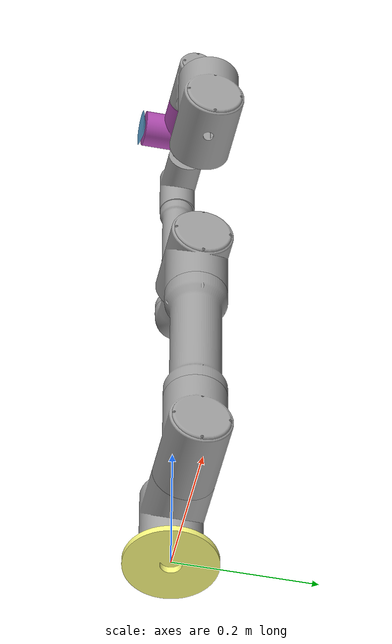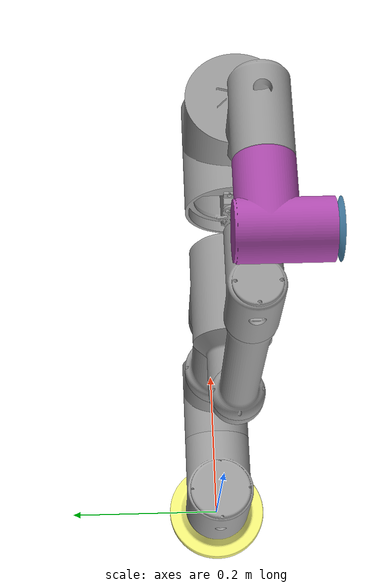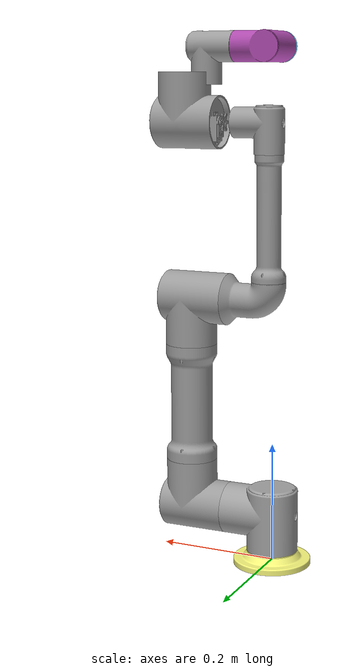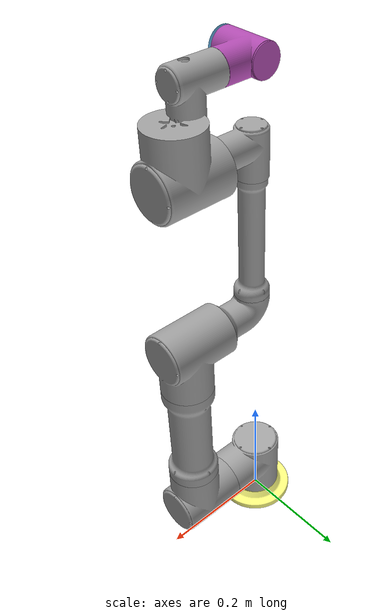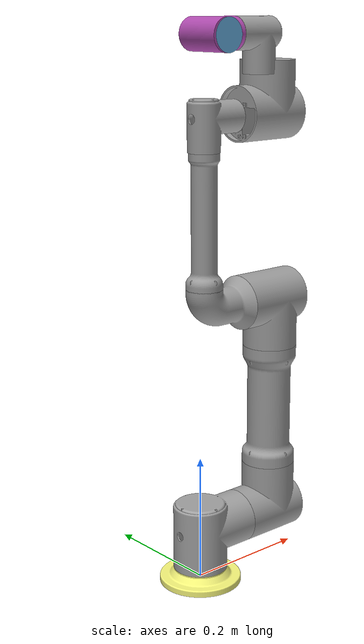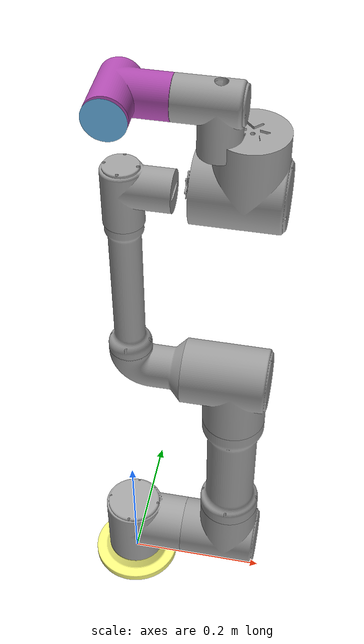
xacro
<?xml version="1.0"?>
<robot xmlns:xacro="http://www.ros.org/wiki/xacro" name="ArmProject">
    <xacro:arg name="initial_positions_file" default="initial_positions.yaml" />

    <!-- Import ArmProject urdf file -->
    <xacro:include filename="$(find ur5Model)/urdf/urdfModel.urdf" />

    <!-- Import control_xacro -->
    <xacro:include filename="ArmProject.ros2_control.xacro" />

    <xacro:ArmProject_ros2_control name="FakeSystem" initial_positions_file="$(arg initial_positions_file)"/>

</robot>

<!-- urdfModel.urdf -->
<robot name="ArmProject">

  <material name="base_v1_material">
     <color rgba="1.0 1.0 0.5 1"/>
  </material>

  <material name="motor_1_v4_material">
    <color rgba="0.647059 0.647059 0.647059 1"/>
  </material>

  <material name="eslabon_r2_v3_material">
     <color rgba="0.627451 0.627451 0.627451 1"/>
  </material>

  <material name="motor_2_v2_material">
    <color rgba="0.627451 0.627451 0.627451 1"/>
  </material>

  <material name="motor_3_v1_2_material">
    <color rgba="0.627451 0.627451 0.627451 1"/>
  </material>

  <material name="codo_1_modificado_v1_material">
    <color rgba="0.627451 0.627451 0.627451 1"/>
  </material>

  <material name="eslabon_r3_v1_material">
    <color rgba="0.627451 0.627451 0.627451 1"/>
  </material>

  <material name="motor_4_v4_material">
    <color rgba="0.627451 0.627451 0.627451 1"/>
  </material>

  <material name="motor_5_v1_material">
    <color rgba="0.627451 0.627451 0.627451 1"/>
  </material>

  <material name="motor_6_v1_material">
    <color rgba="0.627451 0.627451 0.627451 1"/>
  </material>

  <material name="endEfector_material">
    <color rgba="0.7 0.3 0.7 1"/>
  </material>

  <material name="ventosa_material">
    <color rgba="0.4 0.7 0.9 1"/>
  </material>

  <link name="world"/>

  <!-- base_link -->
  <link name="base_link">

    <inertial>
      <origin xyz="0 0 0" rpy="0 0 0"/>
      <mass value="0.250987"/>
      <inertia ixx="0.000229101" ixy="-1.82987e-20" ixz="1.50736e-21"
               iyy="0.000229101" iyz="-2.57961e-21" izz="0.000443337"/>
    </inertial>

    <visual>
      <origin xyz="0 0 0"
              rpy="-1.06778e-17 8.97091e-18 -1.91402"/>
      <geometry>
        <mesh filename="package://ur5Model/meshes/base_v1.stl" scale="0.001 0.001 0.001"/>
      </geometry>
      <material name="base_v1_material"/>
    </visual>

    <collision>
      <origin xyz="0 0 0" rpy="-1.06778e-17 8.97091e-18 -1.91402"/>
      <geometry>
        <mesh filename="package://ur5Model/meshes/base_v1.stl" scale="0.001 0.001 0.001"/>
      </geometry>
    </collision>

  </link>

  <!-- Joint from world to base_link -->
  <joint name="world_to_base" type="fixed">

    <parent link="world"/>
    <child link="base_link"/>
    <origin xyz="0 0 0" rpy="0 0 0"/>

  </joint>

  <!-- motor_1_v4 -->
  <link name="motor_1_v4">

    <inertial>
      <origin xyz="0 0 0" rpy="0 0 0"/>
      <mass value="1.01291"/>
      <inertia ixx="0.00178232" ixy="7.18085e-11" ixz="-1.00158e-10"
               iyy="0.00159644" iyz="-6.26257e-05" izz="0.00117134"/>
    </inertial>

    <visual>
      <origin xyz="0 0 0" rpy="0 0 0"/>
      <geometry>
        <mesh filename="package://ur5Model/meshes/motor_1_v4.stl" scale="0.001 0.001 0.001"/>
      </geometry>
      <material name="motor_1_v4_material"/>
    </visual>

    <collision>
      <origin xyz="0 0 0" rpy="0 0 0"/>
      <geometry>
        <mesh filename="package://ur5Model/meshes/motor_1_v4.stl" scale="0.001 0.001 0.001"/>
      </geometry>
    </collision>

  </link>

  <!-- Joint from base_link to motor_1_v4 -->
  <joint name="base_link_to_motor_1_v4" type="revolute">

    <origin xyz="0 0 0.038" rpy="0 0 0"/>
    <parent link="base_link"/>
    <child link="motor_1_v4"/>
    <axis xyz="0 0 1"/>
    <limit effort="10" velocity="10"
           lower="-3.141592653589793" upper="3.141592653589793"/>

  </joint>

  <!-- motor_2_v2 -->
  <link name="motor_2_v2">

    <inertial>
      <origin xyz="0 0 0" rpy="0 0 0"/>
      <mass value="0.816866"/>
      <inertia ixx="0.00110433" ixy="2.92716e-10" ixz="7.05982e-11"
	       iyy="0.000987213" iyz="2.20299e-05" izz="0.000921334"/>
    </inertial>

    <visual>
      <origin xyz="0.1055 0 0" rpy="0 -1.5708 3.1415"/>
      <geometry>
        <mesh filename="package://ur5Model/meshes/motor_2_v2.stl" scale="0.001 0.001 0.001"/>
      </geometry>
	<material name="motor_2_v2_material"/>
    </visual>

    <collision>
      <origin xyz="0.1055 0 0" rpy="0 -1.5708 3.1415"/>
      <geometry>
        <mesh filename="package://ur5Model/meshes/motor_2_v2.stl" scale="0.001 0.001 0.001"/>
      </geometry>
    </collision>

  </link>

  <!--  Joint from motor_1_v4 to motor_2_v2 -->
  <joint name="motor_1_v4_to_motor_2_v2" type="revolute">

    <origin xyz="0 0 0.043" rpy="0 0 0"/>
    <parent link="motor_1_v4"/>
    <child link="motor_2_v2"/>
    <axis xyz="1 0 0"/>
    <limit effort="10" velocity="10"
	   lower="-0.35" upper="0.35"/>

  </joint>

  <!-- Eslabon_r2_v3 -->
  <link name="eslabon_r2_v3">

    <inertial>
      <origin xyz="0 0 0" rpy="0 0 0"/>
      <mass value="0.620599"/>
      <inertia ixx="0.0030008" ixy="3.77221e-18" ixz="-4.6312e-18"
	       iyy="0.0030008" iyz="-2.72855e-18" izz="0.000298815"/>
    </inertial>

    <visual>
      <origin xyz="0.1485 0 0.08" rpy="0 0 0"/>
      <geometry>
        <mesh filename="package://ur5Model/meshes/eslabon_r2_v3.stl" scale="0.001 0.001 0.001"/>
      </geometry>
	<material name="eslabon_r2_v3_material"/>
    </visual>

    <collision>
      <origin xyz="0.1485 0 0.08" rpy="0 0 0"/>
      <geometry>
        <mesh filename="package://ur5Model/meshes/eslabon_r2_v3.stl" scale="0.001 0.001 0.001"/>
      </geometry>
    </collision>

  </link>

  <!-- Joint from eslabon_r2_v3 to motor_2_v2 -->
  <joint name="motor_2_v2_to_eslabon_r2_v3" type="fixed">

    <origin xyz="0 0 0" rpy="0 0 0"/>
    <parent link="motor_2_v2"/>
    <child link="eslabon_r2_v3"/>

  </joint>

  <!-- Motor_3_v1_2 -->
  <link name="motor_3_v1_2">

    <inertial>
      <origin xyz="0 0 0" rpy="0 0 0"/>
      <mass value="0.816866"/>
      <inertia ixx="0.000987213" ixy="2.92716e-10" ixz="2.20299e-05"
               iyy="0.00110433" iyz="7.05982e-11" izz="0.000921334"/>
    </inertial>

    <visual>
      <origin xyz="0.1055 0 0.36" rpy="0 1.5708 0"/>
      <geometry>
        <mesh filename="package://ur5Model/meshes/motor_3_v1__2.stl" scale="0.001 0.001 0.001"/>
      </geometry>
        <material name="motor_3_v1_2_material"/>
    </visual>

    <collision>
      <origin xyz="0.1055 0 0.36" rpy="0 1.5708 0"/>
      <geometry>
        <mesh filename="package://ur5Model/meshes/motor_3_v1__2.stl" scale="0.001 0.001 0.001"/>
      </geometry>
    </collision>

  </link>

  <!-- Joint from eslabon_r2_v3 to motor_3_v1_2 -->
  <joint name="eslabon_r2_v3_to_motor_3_v1_2" type="fixed">

    <origin xyz="0 0 0" rpy="0 0 0"/>
    <parent link="eslabon_r2_v3"/>
    <child link="motor_3_v1_2"/>

  </joint>

  <!-- Codo_1_modificado_v1 -->
  <link name="codo_1_modificado_v1">

    <inertial>
      <origin xyz="0 0 0" rpy="0 0 0"/>
      <mass value="1e-09"/>
      <inertia ixx="1e-09" ixy="0" ixz="0"
	       iyy="1e-09" iyz="0" izz="1e-09"/>
    </inertial>

    <visual>
      <origin xyz="0.037 0 0" rpy="0 3.1416 1.5708"/>
      <geometry>
        <mesh filename="package://ur5Model/meshes/codo_1_modificado_v1.stl" scale="0.001 0.001 0.001"/>
      </geometry>
        <material name="codo_1_modificado_v1_material"/>
    </visual>

    <collision>
      <origin xyz="0.037 0 0" rpy="0 3.1416 1.5708"/>
      <geometry>
        <mesh filename="package://ur5Model/meshes/codo_1_modificado_v1.stl" scale="0.001 0.001 0.001"/>
      </geometry>
    </collision>

  </link>

  <!--  Joint from motor_3_v1_2 to codo_1_modificado_v1 -->
  <joint name="motor_3_v1_2_to_codo_1_modificado_v1" type="revolute">

    <origin xyz="0 0 0.36" rpy="0 0 0"/>
    <parent link="motor_3_v1_2"/>
    <child link="codo_1_modificado_v1"/>
    <axis xyz="1 0 0"/>
    <limit effort="10" velocity="10"
	   lower="-0.35" upper="0.35"/>

  </joint>

  <!-- Link eslabon_r3_v1 -->
  <link name="eslabon_r3_v1">

    <inertial>
      <origin xyz="0 0 0" rpy="0 0 0"/>
      <mass value="0.34984"/>
      <inertia ixx="0.0014369" ixy="-1.26022e-17" ixz="6.08888e-18"
	       iyy="0.0014369" iyz="9.50174e-19" izz="7.54301e-05"/>
    </inertial>

    <visual>
      <origin xyz="0.0085 0 0.2425" rpy="0 3.1416 0"/>
      <geometry>
        <mesh filename="package://ur5Model/meshes/eslabon_r3_v1.stl" scale="0.001 0.001 0.001"/>
      </geometry>
        <material name="eslabon_r3_v1_material"/>
    </visual>

    <collision>
      <origin xyz="0.0085 0 0.2425" rpy="0 3.1416 0"/>
      <geometry>
        <mesh filename="package://ur5Model/meshes/eslabon_r3_v1.stl" scale="0.001 0.001 0.001"/>
      </geometry>
    </collision>

  </link>

  <!-- Joint from codo_1_modificado_v1 to eslabon_r3_v1 -->
  <joint name="codo_1_modificado_v1_to_eslabon_r3_v1 " type="fixed">

    <origin xyz="0 0 0" rpy="0 0 0"/>
    <parent link="codo_1_modificado_v1"/>
    <child link="eslabon_r3_v1"/>

  </joint>

  <!-- Link motor_4_v4 -->
  <link name="motor_4_v4">

    <inertial>
      <origin xyz="0 0 0" rpy="0 0 0"/>
      <mass value="0.283781"/>
      <inertia ixx="0.000261052" ixy="3.32034e-07" ixz="-1.40786e-07"
               iyy="0.00019133" iyz="2.9564e-05" izz="0.000161552"/>
    </inertial>

    <visual>
      <origin xyz="0.0085 -0.014 0.28" rpy="0 0 0"/>
      <geometry>
        <mesh filename="package://ur5Model/meshes/motor_4_v4.stl" scale="0.001 0.001 0.001"/>
      </geometry>
        <material name="motor_4_v4_material"/>
    </visual>

    <collision>
      <origin xyz="0.0085 -0.014 0.28" rpy="0 0 0"/>
      <geometry>
        <mesh filename="package://ur5Model/meshes/motor_4_v4.stl" scale="0.001 0.001 0.001"/>
      </geometry>
    </collision>

  </link>

  <!-- Joint from eslabon_r3_v1 to motor_4_v4 -->
  <joint name="eslabon_r3_v1_to_motor_4_v4 " type="fixed">

    <origin xyz="0 0 0" rpy="0 0 0"/>
    <parent link="eslabon_r3_v1"/>
    <child link="motor_4_v4"/>

  </joint>

  <!-- Link motor_5_v1 -->
  <link name="motor_5_v1">

    <inertial>
      <origin xyz="0 0 0" rpy="0 0 0"/>
      <mass value="0.283781"/>
      <inertia ixx="0.000248879" ixy="-2.64697e-05" ixz="1.23537e-05"
               iyy="0.000203503" iyz="2.68595e-05" izz="0.000161552"/>
    </inertial>

    <visual>
      <origin xyz="0.108 0.0145 0" rpy="0 -1.5708 3.1416"/>
      <geometry>
        <mesh filename="package://ur5Model/meshes/motor_5_v1.stl" scale="0.001 0.001 0.001"/>
      </geometry>
        <material name="motor_5_v1_material"/>
    </visual>

    <collision>
      <origin xyz="0.108 0.0145 0" rpy="0 -1.5708 3.1416"/>
      <geometry>
        <mesh filename="package://ur5Model/meshes/motor_5_v1.stl" scale="0.001 0.001 0.001"/>
      </geometry>
    </collision>

  </link>

  <!-- Joint from motor_4_v4 to motor_5_v1  -->
  <joint name="motor_4_v4_to_motor_5_v1" type="revolute">

    <origin xyz="0 0.0005 0.2905" rpy="0 0 0"/>
    <parent link="motor_4_v4"/>
    <child link="motor_5_v1"/>
    <axis xyz="1 0 0"/>
    <limit effort="10" velocity="10" lower="-0.35" upper="0.35"/>

  </joint>

  <!-- Link motor_6_v1 -->
  <link name="motor_6_v1">

    <inertial>
      <origin xyz="0 0 0" rpy="0 0 0"/>
      <mass value="0.283781"/>
      <inertia ixx="0.000224033" ixy="4.01588e-05" ixz="-3.59853e-05"
	       iyy="0.000183912" iyz="1.30664e-05" izz="0.000205988"/>
    </inertial>

    <visual>
      <origin xyz="-0.01 -0.014675 0.12" rpy="0 1.5708 0"/>
      <geometry>
        <mesh filename="package://ur5Model/meshes/motor_6_v1.stl" scale="0.001 0.001 0.001"/>
      </geometry>
        <material name="motor_6_v1_material"/>
    </visual>

    <collision>
      <origin xyz="-0.01 -0.014675 0.12" rpy="0 1.5708 0"/>
      <geometry>
        <mesh filename="package://ur5Model/meshes/motor_6_v1.stl" scale="0.001 0.001 0.001"/>
      </geometry>
    </collision>

  </link>

  <!-- Joint from motor_5_v1 to motor_6_v1 -->
  <joint name="motor_5_v1_to_motor_6_v1" type="revolute">

    <origin xyz="0.118 0 0" rpy="0 0 0"/>
    <parent link="motor_5_v1"/>
    <child link="motor_6_v1"/>
    <axis xyz="0 0 1"/>
    <limit effort="10" velocity="10" lower="-1.57" upper="1.57"/>

  </joint>

  <!-- Link endEfector -->
  <link name="endEfector">

    <inertial>
      <origin xyz="0 0 0" rpy="0 0 0"/>
      <mass value="0.283781"/>
      <inertia ixx="0.000224033" ixy="4.01588e-05" ixz="-3.59853e-05"
	       iyy="0.000183912" iyz="1.30664e-05" izz="0.000205988"/>
    </inertial>

    <visual>
      <origin xyz="-0.11 -0.0251 0" rpy="0 0 0"/>
      <geometry>
        <mesh filename="package://ur5Model/meshes/endEfector.stl"/>
      </geometry>
        <material name="endEfector_material"/>
    </visual>

    <collision>
      <origin xyz="-0.11 -0.0251 0" rpy="0 0 0"/>
      <geometry>
        <mesh filename="package://ur5Model/meshes/endEfector.stl"/>
      </geometry>
    </collision>

  </link>

  <!-- Joint from motor_6_v1 to endEfector -->
  <joint name="motor_6_v1_to_endEfector" type="revolute">

    <origin xyz="0 0 0.12" rpy="0 0 0"/>
    <parent link="motor_6_v1"/>
    <child link="endEfector"/>
    <axis xyz="1 0 0"/>
    <limit effort="10" velocity="10" lower="-3.141592653589793" upper="3.141592653589793"/>

  </joint>

  <!-- ventosa-->
  <link name="ventosa">

    <inertial>
      <origin xyz="0 0 0" rpy="0 0 0"/>
      <mass value="0.34984"/>
      <inertia ixx="0.0014369" ixy="-1.26022e-17" ixz="6.08888e-18"
	       iyy="0.0014369" iyz="9.50174e-19" izz="7.54301e-05"/>
    </inertial>

    <visual>
      <origin xyz="0 0 0" rpy="-1.5708 0 0"/>
      <geometry>
        <mesh filename="package://ur5Model/meshes/ventosa.stl" scale="0.0005 0.0005 0.0005"/>
      </geometry>
        <material name="ventosa_material"/>
    </visual>

    <collision>
      <origin xyz="0 0 0" rpy="-1.5708 0 0"/>
      <geometry>
        <mesh filename="package://ur5Model/meshes/ventosa.stl" scale="0.0005 0.0005 0.0005"/>
      </geometry>
    </collision>

  </link>

  <!-- Joint from endEfector to ventosa -->
  <joint name="endEfector_to_ventosa " type="fixed">

    <origin xyz="-0.11 -0.055 0" rpy="0 0 0"/>
    <parent link="endEfector"/>
    <child link="ventosa"/>

  </joint>

</robot>
